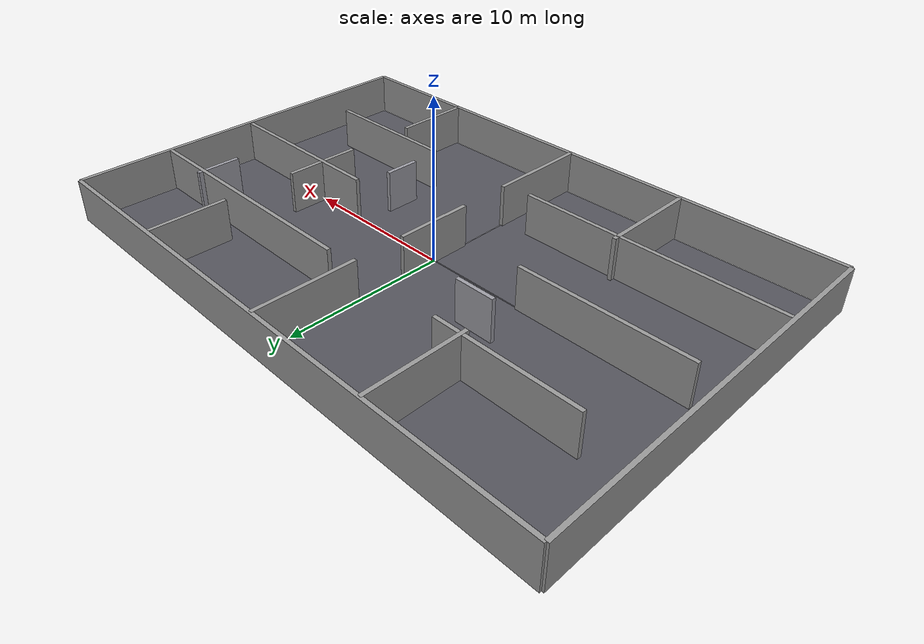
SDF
<?xml version="1.0"?>
<sdf version="1.7">
  <world name="house_world_no_holes">

    <!-- systems -->
    <plugin filename="gz-sim-physics-system"           name="gz::sim::systems::Physics"/>
    <plugin filename="gz-sim-user-commands-system"     name="gz::sim::systems::UserCommands"/>
    <plugin filename="gz-sim-scene-broadcaster-system" name="gz::sim::systems::SceneBroadcaster"/>
    <plugin filename="gz-sim-sensors-system"           name="gz::sim::systems::Sensors">
      <render_engine>ogre2</render_engine>
    </plugin>

    <!-- scene / light -->
    <scene>
      <ambient>0.55 0.55 0.58 1</ambient>
      <background>0.82 0.85 0.90 1</background>
      <shadows>true</shadows>
    </scene>
    <light name="sun" type="directional">
      <pose>0 0 60 0 0 0</pose>
      <diffuse>1 1 0.95 1</diffuse>
      <specular>0.3 0.3 0.3 1</specular>
      <direction>-0.35 0.20 -0.90</direction>
      <cast_shadows>true</cast_shadows>
    </light>

    <!-- พื้นในบ้าน (พอดีกรอบ ไม่ล้น) -->
    <!-- ภายในจริง ≈ 36-0.25=35.75  x  24-0.25=23.75  -->
    <model name="house_floor">
      <static>true</static>
      <pose>0 0 0.02 0 0 0</pose>
      <link name="link">
        <collision name="c"><geometry><box><size>35.60 23.60 0.02</size></box></geometry></collision>
        <visual name="v">
          <geometry><box><size>35.60 23.60 0.02</size></box></geometry>
          <material>
            <ambient>0.28 0.28 0.30 1</ambient>
            <diffuse>0.33 0.33 0.36 1</diffuse>
            <specular>0.05 0.05 0.05 1</specular>
          </material>
        </visual>
        <!-- เส้นกริดบาง ๆ (อยู่เฉพาะบนพื้นนี้เท่านั้น) -->
        <visual name="grid_x"><pose>0 0 0.03 0 0 0</pose>
          <geometry><box><size>35.60 0.06 0.002</size></box></geometry>
          <material><diffuse>0.9 0.9 0.9 0.25</diffuse></material>
        </visual>
        <visual name="grid_y"><pose>0 0 0.03 0 0 1.5708</pose>
          <geometry><box><size>23.60 0.06 0.002</size></box></geometry>
          <material><diffuse>0.9 0.9 0.9 0.25</diffuse></material>
        </visual>
      </link>
    </model>

    <!-- ========== ผนังรอบนอก (ทึบทั้งสี่ด้าน) ========== -->
    <model name="outer_north"><static>true</static><pose>0 12 1.35 0 0 0</pose>
      <link name="link">
        <collision name="c"><geometry><box><size>36 0.25 2.7</size></box></geometry></collision>
        <visual name="v"><geometry><box><size>36 0.25 2.7</size></box></geometry>
          <material><ambient>0.50 0.50 0.50 1</ambient><diffuse>0.60 0.60 0.60 1</diffuse></material>
        </visual>
      </link>
    </model>
    <model name="outer_south"><static>true</static><pose>0 -12 1.35 0 0 0</pose>
      <link name="link">
        <collision name="c"><geometry><box><size>36 0.25 2.7</size></box></geometry></collision>
        <visual name="v"><geometry><box><size>36 0.25 2.7</size></box></geometry>
          <material><ambient>0.50 0.50 0.50 1</ambient><diffuse>0.60 0.60 0.60 1</diffuse></material>
        </visual>
      </link>
    </model>
    <model name="outer_east"><static>true</static><pose>18 0 1.35 0 0 0</pose>
      <link name="link">
        <collision name="c"><geometry><box><size>0.25 24 2.7</size></box></geometry></collision>
        <visual name="v"><geometry><box><size>0.25 24 2.7</size></box></geometry>
          <material><ambient>0.50 0.50 0.50 1</ambient><diffuse>0.60 0.60 0.60 1</diffuse></material>
        </visual>
      </link>
    </model>
    <model name="outer_west"><static>true</static><pose>-18 0 1.35 0 0 0</pose>
      <link name="link">
        <collision name="c"><geometry><box><size>0.25 24 2.7</size></box></geometry></collision>
        <visual name="v"><geometry><box><size>0.25 24 2.7</size></box></geometry>
          <material><ambient>0.50 0.50 0.50 1</ambient><diffuse>0.60 0.60 0.60 1</diffuse></material>
        </visual>
      </link>
    </model>

    <!-- ========== ผนังด้านใน (คงช่องประตู 3.20 m) ========== -->
    <!-- คอร์ริดอร์กลาง -->
    <model name="v_main_top"><static>true</static><pose>0 8.80 1.35 0 0 0</pose>
      <link name="link"><collision name="c"><geometry><box><size>0.25 6.40 2.7</size></box></geometry></collision>
        <visual name="v"><geometry><box><size>0.25 6.40 2.7</size></box></geometry>
          <material><ambient>0.50 0.50 0.50 1</ambient><diffuse>0.60 0.60 0.60 1</diffuse></material></visual></link>
    </model>
    <model name="v_main_mid"><static>true</static><pose>0 0 1.35 0 0 0</pose>
      <link name="link"><collision name="c"><geometry><box><size>0.25 4.80 2.7</size></box></geometry></collision>
        <visual name="v"><geometry><box><size>0.25 4.80 2.7</size></box></geometry>
          <material><ambient>0.50 0.50 0.50 1</ambient><diffuse>0.60 0.60 0.60 1</diffuse></material></visual></link>
    </model>
    <model name="v_main_bot"><static>true</static><pose>0 -8.80 1.35 0 0 0</pose>
      <link name="link"><collision name="c"><geometry><box><size>0.25 6.40 2.7</size></box></geometry></collision>
        <visual name="v"><geometry><box><size>0.25 6.40 2.7</size></box></geometry>
          <material><ambient>0.50 0.50 0.50 1</ambient><diffuse>0.60 0.60 0.60 1</diffuse></material></visual></link>
    </model>

    <!-- ผนังซ้าย/ขวา และแนวนอน (เหมือนเวอร์ชันก่อน) -->
    <model name="v_left_top"><static>true</static><pose>-8 8.80 1.35 0 0 0</pose>
      <link name="link"><collision name="c"><geometry><box><size>0.25 6.40 2.7</size></box></geometry></collision>
        <visual name="v"><geometry><box><size>0.25 6.40 2.7</size></box></geometry>
          <material><ambient>0.50 0.50 0.50 1</ambient><diffuse>0.60 0.60 0.60 1</diffuse></material></visual></link>
    </model>
    <model name="v_left_bot"><static>true</static><pose>-8 -8.80 1.35 0 0 0</pose>
      <link name="link"><collision name="c"><geometry><box><size>0.25 6.40 2.7</size></box></geometry></collision>
        <visual name="v"><geometry><box><size>0.25 6.40 2.7</size></box></geometry>
          <material><ambient>0.50 0.50 0.50 1</ambient><diffuse>0.60 0.60 0.60 1</diffuse></material></visual></link>
    </model>

    <model name="v_right_top"><static>true</static><pose>10 9.50 1.35 0 0 0</pose>
      <link name="link"><collision name="c"><geometry><box><size>0.25 5.00 2.7</size></box></geometry></collision>
        <visual name="v"><geometry><box><size>0.25 5.00 2.7</size></box></geometry>
          <material><ambient>0.50 0.50 0.50 1</ambient><diffuse>0.60 0.60 0.60 1</diffuse></material></visual></link>
    </model>
    <model name="v_right_mid"><static>true</static><pose>10 0 1.35 0 0 0</pose>
      <link name="link"><collision name="c"><geometry><box><size>0.25 4.80 2.7</size></box></geometry></collision>
        <visual name="v"><geometry><box><size>0.25 4.80 2.7</size></box></geometry>
          <material><ambient>0.50 0.50 0.50 1</ambient><diffuse>0.60 0.60 0.60 1</diffuse></material></visual></link>
    </model>
    <model name="v_right_bot"><static>true</static><pose>10 -9.50 1.35 0 0 0</pose>
      <link name="link"><collision name="c"><geometry><box><size>0.25 5.00 2.7</size></box></geometry></collision>
        <visual name="v"><geometry><box><size>0.25 5.00 2.7</size></box></geometry>
          <material><ambient>0.50 0.50 0.50 1</ambient><diffuse>0.60 0.60 0.60 1</diffuse></material></visual></link>
    </model>

    <!-- แนวนอน y=+6, 0, -6 (เว้นช่อง 3.2 m) -->
    <model name="h_y+6_left"><static>true</static><pose>-10.60 6 1.35 0 0 0</pose>
      <link name="link"><collision name="c"><geometry><box><size>8.80 0.25 2.7</size></box></geometry></collision>
        <visual name="v"><geometry><box><size>8.80 0.25 2.7</size></box></geometry>
          <material><ambient>0.50 0.50 0.50 1</ambient><diffuse>0.60 0.60 0.60 1</diffuse></material></visual></link>
    </model>
    <model name="h_y+6_right"><static>true</static><pose>9.80 6 1.35 0 0 0</pose>
      <link name="link"><collision name="c"><geometry><box><size>16.20 0.25 2.7</size></box></geometry></collision>
        <visual name="v"><geometry><box><size>16.20 0.25 2.7</size></box></geometry>
          <material><ambient>0.50 0.50 0.50 1</ambient><diffuse>0.60 0.60 0.60 1</diffuse></material></visual></link>
    </model>

    <model name="h_y0_left"><static>true</static><pose>-11.40 0 1.35 0 0 0</pose>
      <link name="link"><collision name="c"><geometry><box><size>10.40 0.25 2.7</size></box></geometry></collision>
        <visual name="v"><geometry><box><size>10.40 0.25 2.7</size></box></geometry>
          <material><ambient>0.50 0.50 0.50 1</ambient><diffuse>0.60 0.60 0.60 1</diffuse></material></visual></link>
    </model>
    <model name="h_y0_right"><static>true</static><pose>12.20 0 1.35 0 0 0</pose>
      <link name="link"><collision name="c"><geometry><box><size>11.20 0.25 2.7</size></box></geometry></collision>
        <visual name="v"><geometry><box><size>11.20 0.25 2.7</size></box></geometry>
          <material><ambient>0.50 0.50 0.50 1</ambient><diffuse>0.60 0.60 0.60 1</diffuse></material></visual></link>
    </model>

    <model name="h_y-6_left"><static>true</static><pose>-9.80 -6 1.35 0 0 0</pose>
      <link name="link"><collision name="c"><geometry><box><size>16.20 0.25 2.7</size></box></geometry></collision>
        <visual name="v"><geometry><box><size>16.20 0.25 2.7</size></box></geometry>
          <material><ambient>0.50 0.50 0.50 1</ambient><diffuse>0.60 0.60 0.60 1</diffuse></material></visual></link>
    </model>
    <model name="h_y-6_right"><static>true</static><pose>10.60 -6 1.35 0 0 0</pose>
      <link name="link"><collision name="c"><geometry><box><size>8.80 0.25 2.7</size></box></geometry></collision>
        <visual name="v"><geometry><box><size>8.80 0.25 2.7</size></box></geometry>
          <material><ambient>0.50 0.50 0.50 1</ambient><diffuse>0.60 0.60 0.60 1</diffuse></material></visual></link>
    </model>

    <!-- ผนังสั้น ๆ (ห้องน้ำ/ห้องเก็บของ ฯลฯ) -->
    <model name="stub_a"><static>true</static><pose>-6 3 1.35 0 0 0</pose>
      <link name="link"><collision name="c"><geometry><box><size>2.50 0.25 2.7</size></box></geometry></collision>
        <visual name="v"><geometry><box><size>2.50 0.25 2.7</size></box></geometry>
          <material><ambient>0.52 0.52 0.55 1</ambient><diffuse>0.62 0.62 0.65 1</diffuse></material></visual></link>
    </model>
    <model name="stub_b"><static>true</static><pose>6 -3 1.35 0 0 1.5708</pose>
      <link name="link"><collision name="c"><geometry><box><size>2.20 0.25 2.7</size></box></geometry></collision>
        <visual name="v"><geometry><box><size>2.20 0.25 2.7</size></box></geometry>
          <material><ambient>0.52 0.52 0.55 1</ambient><diffuse>0.62 0.62 0.65 1</diffuse></material></visual></link>
    </model>
    <model name="stub_c"><static>true</static><pose>14 5 1.35 0 0 1.5708</pose>
      <link name="link"><collision name="c"><geometry><box><size>2.80 0.25 2.7</size></box></geometry></collision>
        <visual name="v"><geometry><box><size>2.80 0.25 2.7</size></box></geometry>
          <material><ambient>0.52 0.52 0.55 1</ambient><diffuse>0.62 0.62 0.65 1</diffuse></material></visual></link>
    </model>

    <!-- กล้องมุมสูง -->
    <gui>
      <camera name="user_camera">
        <pose>0 -55 24 0.90 0 0</pose>
      </camera>
    </gui>

  </world>
</sdf>
